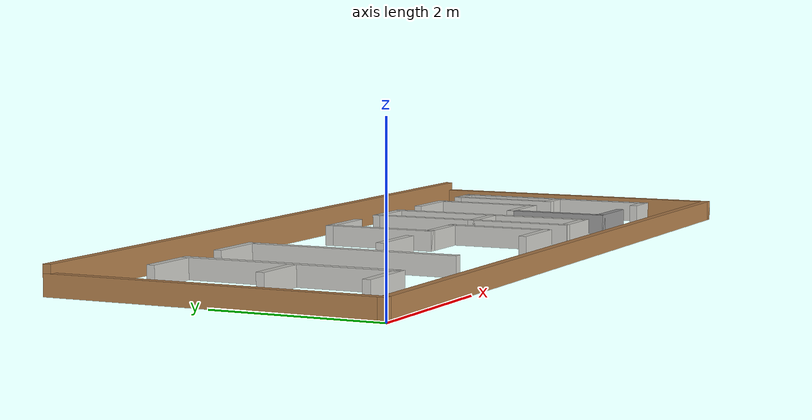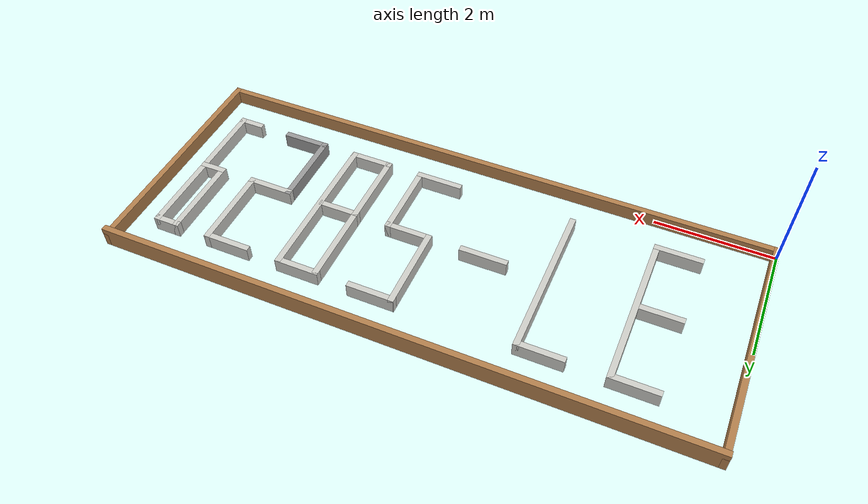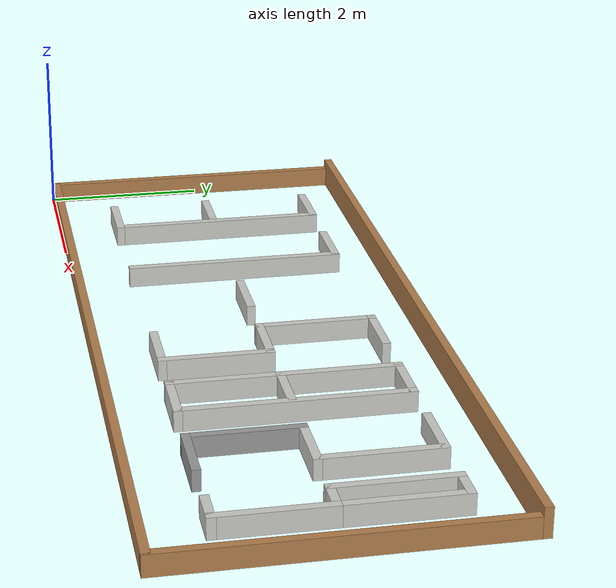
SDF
<?xml version='1.0'?>
<sdf version='1.6'>
  <model name='ms4_map'>
    <pose frame=''>5 2 0 0 -0 0</pose>
    <link name='Wall_0'>
      <collision name='Wall_0_Collision'>
        <geometry>
          <box>
            <size>10 0.1 0.25</size>
          </box>
        </geometry>
        <pose frame=''>0 0 0.125 0 -0 0</pose>
      </collision>
      <visual name='Wall_0_Visual'>
        <pose frame=''>0 0 0.125 0 -0 0</pose>
        <geometry>
          <box>
            <size>10 0.1 0.25</size>
          </box>
        </geometry>
        <material>
          <script>
            <uri>file://media/materials/scripts/gazebo.material</uri>
            <name>Gazebo/Wood</name>
          </script>
          <ambient>1 1 1 1</ambient>
        </material>
      </visual>
      <pose frame=''>0 -1.95 0 0 -0 0</pose>
    </link>
    <link name='Wall_11'>
      <collision name='Wall_11_Collision'>
        <geometry>
          <box>
            <size>4 0.1 0.25</size>
          </box>
        </geometry>
        <pose frame=''>0 0 0.125 0 -0 0</pose>
      </collision>
      <visual name='Wall_11_Visual'>
        <pose frame=''>0 0 0.125 0 -0 0</pose>
        <geometry>
          <box>
            <size>4 0.1 0.25</size>
          </box>
        </geometry>
        <material>
          <script>
            <uri>file://media/materials/scripts/gazebo.material</uri>
            <name>Gazebo/Wood</name>
          </script>
          <ambient>1 1 1 1</ambient>
        </material>
      </visual>
      <pose frame=''>4.95 0 0 0 -0 1.5708</pose>
    </link>
    <link name='Wall_17'>
      <collision name='Wall_17_Collision'>
        <geometry>
          <box>
            <size>0.8 0.1 0.25</size>
          </box>
        </geometry>
        <pose frame=''>0 0 0.125 0 -0 0</pose>
      </collision>
      <visual name='Wall_17_Visual'>
        <pose frame=''>0 0 0.125 0 -0 0</pose>
        <geometry>
          <box>
            <size>0.8 0.1 0.25</size>
          </box>
        </geometry>
        <material>
          <script>
            <uri>file://media/materials/scripts/gazebo.material</uri>
            <name>Gazebo/CeilingTiled</name>
          </script>
          <ambient>1 1 1 1</ambient>
        </material>
      </visual>
      <pose frame=''>-3.55 1.35 0 0 -0 0</pose>
    </link>
    <link name='Wall_21'>
      <collision name='Wall_21_Collision'>
        <geometry>
          <box>
            <size>2.7 0.1 0.25</size>
          </box>
        </geometry>
        <pose frame=''>0 0 0.125 0 -0 0</pose>
      </collision>
      <visual name='Wall_21_Visual'>
        <pose frame=''>0 0 0.125 0 -0 0</pose>
        <geometry>
          <box>
            <size>2.7 0.1 0.25</size>
          </box>
        </geometry>
        <material>
          <script>
            <uri>file://media/materials/scripts/gazebo.material</uri>
            <name>Gazebo/CeilingTiled</name>
          </script>
          <ambient>1 1 1 1</ambient>
        </material>
      </visual>
      <pose frame=''>-3.2 0.05 0 0 0 -1.5708</pose>
    </link>
    <link name='Wall_23'>
      <collision name='Wall_23_Collision'>
        <geometry>
          <box>
            <size>0.8 0.1 0.25</size>
          </box>
        </geometry>
        <pose frame=''>0 0 0.125 0 -0 0</pose>
      </collision>
      <visual name='Wall_23_Visual'>
        <pose frame=''>0 0 0.125 0 -0 0</pose>
        <geometry>
          <box>
            <size>0.8 0.1 0.25</size>
          </box>
        </geometry>
        <material>
          <script>
            <uri>file://media/materials/scripts/gazebo.material</uri>
            <name>Gazebo/CeilingTiled</name>
          </script>
          <ambient>1 1 1 1</ambient>
        </material>
      </visual>
      <pose frame=''>-3.55 -1.25 0 0 -0 3.14159</pose>
    </link>
    <link name='Wall_27'>
      <collision name='Wall_27_Collision'>
        <geometry>
          <box>
            <size>0.7 0.1 0.25</size>
          </box>
        </geometry>
        <pose frame=''>0 0 0.125 0 -0 0</pose>
      </collision>
      <visual name='Wall_27_Visual'>
        <pose frame=''>0 0 0.125 0 -0 0</pose>
        <geometry>
          <box>
            <size>0.7 0.1 0.25</size>
          </box>
        </geometry>
        <material>
          <script>
            <uri>file://media/materials/scripts/gazebo.material</uri>
            <name>Gazebo/CeilingTiled</name>
          </script>
          <ambient>1 1 1 1</ambient>
        </material>
      </visual>
      <pose frame=''>-3.599 0 0 0 -0 3.14159</pose>
    </link>
    <link name='Wall_29'>
      <collision name='Wall_29_Collision'>
        <geometry>
          <box>
            <size>0.8 0.1 0.25</size>
          </box>
        </geometry>
        <pose frame=''>0 0 0.125 0 -0 0</pose>
      </collision>
      <visual name='Wall_29_Visual'>
        <pose frame=''>0 0 0.125 0 -0 0</pose>
        <geometry>
          <box>
            <size>0.8 0.1 0.25</size>
          </box>
        </geometry>
        <material>
          <script>
            <uri>file://media/materials/scripts/gazebo.material</uri>
            <name>Gazebo/CeilingTiled</name>
          </script>
          <ambient>1 1 1 1</ambient>
        </material>
      </visual>
      <pose frame=''>-2.15 1.35 0 0 -0 0</pose>
    </link>
    <link name='Wall_31'>
      <collision name='Wall_31_Collision'>
        <geometry>
          <box>
            <size>2.7 0.1 0.25</size>
          </box>
        </geometry>
        <pose frame=''>0 0 0.125 0 -0 0</pose>
      </collision>
      <visual name='Wall_31_Visual'>
        <pose frame=''>0 0 0.125 0 -0 0</pose>
        <geometry>
          <box>
            <size>2.7 0.1 0.25</size>
          </box>
        </geometry>
        <material>
          <script>
            <uri>file://media/materials/scripts/gazebo.material</uri>
            <name>Gazebo/CeilingTiled</name>
          </script>
          <ambient>1 1 1 1</ambient>
        </material>
      </visual>
      <pose frame=''>-1.8 0.05 0 0 0 -1.5708</pose>
    </link>
    <link name='Wall_34'>
      <collision name='Wall_34_Collision'>
        <geometry>
          <box>
            <size>0.8 0.1 0.25</size>
          </box>
        </geometry>
        <pose frame=''>0 0 0.125 0 -0 0</pose>
      </collision>
      <visual name='Wall_34_Visual'>
        <pose frame=''>0 0 0.125 0 -0 0</pose>
        <geometry>
          <box>
            <size>0.8 0.1 0.25</size>
          </box>
        </geometry>
        <material>
          <script>
            <uri>file://media/materials/scripts/gazebo.material</uri>
            <name>Gazebo/CeilingTiled</name>
          </script>
          <ambient>1 1 1 1</ambient>
        </material>
      </visual>
      <pose frame=''>-0.75 0 0 0 -0 0</pose>
    </link>
    <link name='Wall_36'>
      <collision name='Wall_36_Collision'>
        <geometry>
          <box>
            <size>0.8 0.1 0.25</size>
          </box>
        </geometry>
        <pose frame=''>0 0 0.125 0 -0 0</pose>
      </collision>
      <visual name='Wall_36_Visual'>
        <pose frame=''>0 0 0.125 0 -0 0</pose>
        <geometry>
          <box>
            <size>0.8 0.1 0.25</size>
          </box>
        </geometry>
        <material>
          <script>
            <uri>file://media/materials/scripts/gazebo.material</uri>
            <name>Gazebo/CeilingTiled</name>
          </script>
          <ambient>1 1 1 1</ambient>
        </material>
      </visual>
      <pose frame=''>0.55 1.35 0 0 -0 0</pose>
    </link>
    <link name='Wall_4'>
      <collision name='Wall_4_Collision'>
        <geometry>
          <box>
            <size>4.00021 0.1 0.25</size>
          </box>
        </geometry>
        <pose frame=''>0 0 0.125 0 -0 0</pose>
      </collision>
      <visual name='Wall_4_Visual'>
        <pose frame=''>0 0 0.125 0 -0 0</pose>
        <geometry>
          <box>
            <size>4.00021 0.1 0.25</size>
          </box>
        </geometry>
        <material>
          <script>
            <uri>file://media/materials/scripts/gazebo.material</uri>
            <name>Gazebo/Wood</name>
          </script>
          <ambient>1 1 1 1</ambient>
        </material>
      </visual>
      <pose frame=''>-4.95 0 0 0 -0 1.5708</pose>
    </link>
    <link name='Wall_40'>
      <collision name='Wall_40_Collision'>
        <geometry>
          <box>
            <size>1.45 0.1 0.25</size>
          </box>
        </geometry>
        <pose frame=''>0 0 0.125 0 -0 0</pose>
      </collision>
      <visual name='Wall_40_Visual'>
        <pose frame=''>0 0 0.125 0 -0 0</pose>
        <geometry>
          <box>
            <size>1.45 0.1 0.25</size>
          </box>
        </geometry>
        <material>
          <script>
            <uri>file://media/materials/scripts/gazebo.material</uri>
            <name>Gazebo/CeilingTiled</name>
          </script>
          <ambient>1 1 1 1</ambient>
        </material>
      </visual>
      <pose frame=''>0.2 0.675 0 0 0 -1.5708</pose>
    </link>
    <link name='Wall_42'>
      <collision name='Wall_42_Collision'>
        <geometry>
          <box>
            <size>0.8 0.1 0.25</size>
          </box>
        </geometry>
        <pose frame=''>0 0 0.125 0 -0 0</pose>
      </collision>
      <visual name='Wall_42_Visual'>
        <pose frame=''>0 0 0.125 0 -0 0</pose>
        <geometry>
          <box>
            <size>0.8 0.1 0.25</size>
          </box>
        </geometry>
        <material>
          <script>
            <uri>file://media/materials/scripts/gazebo.material</uri>
            <name>Gazebo/CeilingTiled</name>
          </script>
          <ambient>1 1 1 1</ambient>
        </material>
      </visual>
      <pose frame=''>0.55 0 0 0 -0 0</pose>
    </link>
    <link name='Wall_44'>
      <collision name='Wall_44_Collision'>
        <geometry>
          <box>
            <size>1.35 0.1 0.25</size>
          </box>
        </geometry>
        <pose frame=''>0 0 0.125 0 -0 0</pose>
      </collision>
      <visual name='Wall_44_Visual'>
        <pose frame=''>0 0 0.125 0 -0 0</pose>
        <geometry>
          <box>
            <size>1.35 0.1 0.25</size>
          </box>
        </geometry>
        <material>
          <script>
            <uri>file://media/materials/scripts/gazebo.material</uri>
            <name>Gazebo/CeilingTiled</name>
          </script>
          <ambient>1 1 1 1</ambient>
        </material>
      </visual>
      <pose frame=''>0.9 -0.625 0 0 0 -1.5708</pose>
    </link>
    <link name='Wall_46'>
      <collision name='Wall_46_Collision'>
        <geometry>
          <box>
            <size>0.8 0.1 0.25</size>
          </box>
        </geometry>
        <pose frame=''>0 0 0.125 0 -0 0</pose>
      </collision>
      <visual name='Wall_46_Visual'>
        <pose frame=''>0 0 0.125 0 -0 0</pose>
        <geometry>
          <box>
            <size>0.8 0.1 0.25</size>
          </box>
        </geometry>
        <material>
          <script>
            <uri>file://media/materials/scripts/gazebo.material</uri>
            <name>Gazebo/CeilingTiled</name>
          </script>
          <ambient>1 1 1 1</ambient>
        </material>
      </visual>
      <pose frame=''>0.55 -1.25 0 0 -0 3.14159</pose>
    </link>
    <link name='Wall_48'>
      <collision name='Wall_48_Collision'>
        <geometry>
          <box>
            <size>0.75 0.1 0.25</size>
          </box>
        </geometry>
        <pose frame=''>0 0 0.125 0 -0 0</pose>
      </collision>
      <visual name='Wall_48_Visual'>
        <pose frame=''>0 0 0.125 0 -0 0</pose>
        <geometry>
          <box>
            <size>0.75 0.1 0.25</size>
          </box>
        </geometry>
        <material>
          <script>
            <uri>file://media/materials/scripts/gazebo.material</uri>
            <name>Gazebo/CeilingTiled</name>
          </script>
          <ambient>1 1 1 1</ambient>
        </material>
      </visual>
      <pose frame=''>1.825 1.35 0 0 -0 0</pose>
    </link>
    <link name='Wall_50'>
      <collision name='Wall_50_Collision'>
        <geometry>
          <box>
            <size>2.7 0.1 0.25</size>
          </box>
        </geometry>
        <pose frame=''>0 0 0.125 0 -0 0</pose>
      </collision>
      <visual name='Wall_50_Visual'>
        <pose frame=''>0 0 0.125 0 -0 0</pose>
        <geometry>
          <box>
            <size>2.7 0.1 0.25</size>
          </box>
        </geometry>
        <material>
          <script>
            <uri>file://media/materials/scripts/gazebo.material</uri>
            <name>Gazebo/CeilingTiled</name>
          </script>
          <ambient>1 1 1 1</ambient>
        </material>
      </visual>
      <pose frame=''>1.5 0.05 0 0 0 -1.5708</pose>
    </link>
    <link name='Wall_52'>
      <collision name='Wall_52_Collision'>
        <geometry>
          <box>
            <size>2.7 0.1 0.25</size>
          </box>
        </geometry>
        <pose frame=''>0 0 0.125 0 -0 0</pose>
      </collision>
      <visual name='Wall_52_Visual'>
        <pose frame=''>0 0 0.125 0 -0 0</pose>
        <geometry>
          <box>
            <size>2.7 0.1 0.25</size>
          </box>
        </geometry>
        <material>
          <script>
            <uri>file://media/materials/scripts/gazebo.material</uri>
            <name>Gazebo/CeilingTiled</name>
          </script>
          <ambient>1 1 1 1</ambient>
        </material>
      </visual>
      <pose frame=''>2.15 0.05 0 0 0 -1.5708</pose>
    </link>
    <link name='Wall_54'>
      <collision name='Wall_54_Collision'>
        <geometry>
          <box>
            <size>0.75 0.1 0.25</size>
          </box>
        </geometry>
        <pose frame=''>0 0 0.125 0 -0 0</pose>
      </collision>
      <visual name='Wall_54_Visual'>
        <pose frame=''>0 0 0.125 0 -0 0</pose>
        <geometry>
          <box>
            <size>0.75 0.1 0.25</size>
          </box>
        </geometry>
        <material>
          <script>
            <uri>file://media/materials/scripts/gazebo.material</uri>
            <name>Gazebo/CeilingTiled</name>
          </script>
          <ambient>1 1 1 1</ambient>
        </material>
      </visual>
      <pose frame=''>1.825 -1.25 0 0 -0 0</pose>
    </link>
    <link name='Wall_56'>
      <collision name='Wall_56_Collision'>
        <geometry>
          <box>
            <size>0.7 0.1 0.25</size>
          </box>
        </geometry>
        <pose frame=''>0 0 0.125 0 -0 0</pose>
      </collision>
      <visual name='Wall_56_Visual'>
        <pose frame=''>0 0 0.125 0 -0 0</pose>
        <geometry>
          <box>
            <size>0.7 0.1 0.25</size>
          </box>
        </geometry>
        <material>
          <script>
            <uri>file://media/materials/scripts/gazebo.material</uri>
            <name>Gazebo/CeilingTiled</name>
          </script>
          <ambient>1 1 1 1</ambient>
        </material>
      </visual>
      <pose frame=''>1.8 0 0 0 -0 0</pose>
    </link>
    <link name='Wall_58'>
      <collision name='Wall_58_Collision'>
        <geometry>
          <box>
            <size>0.8 0.1 0.25</size>
          </box>
        </geometry>
        <pose frame=''>0 0 0.125 0 -0 0</pose>
      </collision>
      <visual name='Wall_58_Visual'>
        <pose frame=''>0 0 0.125 0 -0 0</pose>
        <geometry>
          <box>
            <size>0.8 0.1 0.25</size>
          </box>
        </geometry>
        <material>
          <script>
            <uri>file://media/materials/scripts/gazebo.material</uri>
            <name>Gazebo/CeilingTiled</name>
          </script>
          <ambient>1 1 1 1</ambient>
        </material>
      </visual>
      <pose frame=''>3.1 1.35 0 0 -0 0</pose>
    </link>
    <link name='Wall_60'>
      <collision name='Wall_60_Collision'>
        <geometry>
          <box>
            <size>1.45 0.1 0.25</size>
          </box>
        </geometry>
        <pose frame=''>0 0 0.125 0 -0 0</pose>
      </collision>
      <visual name='Wall_60_Visual'>
        <pose frame=''>0 0 0.125 0 -0 0</pose>
        <geometry>
          <box>
            <size>1.45 0.1 0.25</size>
          </box>
        </geometry>
        <material>
          <script>
            <uri>file://media/materials/scripts/gazebo.material</uri>
            <name>Gazebo/CeilingTiled</name>
          </script>
          <ambient>1 1 1 1</ambient>
        </material>
      </visual>
      <pose frame=''>3.45 0.675 0 0 0 -1.5708</pose>
    </link>
    <link name='Wall_62'>
      <collision name='Wall_62_Collision'>
        <geometry>
          <box>
            <size>0.8 0.1 0.25</size>
          </box>
        </geometry>
        <pose frame=''>0 0 0.125 0 -0 0</pose>
      </collision>
      <visual name='Wall_62_Visual'>
        <pose frame=''>0 0 0.125 0 -0 0</pose>
        <geometry>
          <box>
            <size>0.8 0.1 0.25</size>
          </box>
        </geometry>
        <material>
          <script>
            <uri>file://media/materials/scripts/gazebo.material</uri>
            <name>Gazebo/CeilingTiled</name>
          </script>
          <ambient>1 1 1 1</ambient>
        </material>
      </visual>
      <pose frame=''>3.1 0 0 0 -0 3.14159</pose>
    </link>
    <link name='Wall_64'>
      <collision name='Wall_64_Collision'>
        <geometry>
          <box>
            <size>1.35 0.1 0.25</size>
          </box>
        </geometry>
        <pose frame=''>0 0 0.125 0 -0 0</pose>
      </collision>
      <visual name='Wall_64_Visual'>
        <pose frame=''>0 0 0.125 0 -0 0</pose>
        <geometry>
          <box>
            <size>1.35 0.1 0.25</size>
          </box>
        </geometry>
        <material>
          <script>
            <uri>file://media/materials/scripts/gazebo.material</uri>
            <name>Gazebo/Grey</name>
          </script>
          <ambient>1 1 1 1</ambient>
        </material>
      </visual>
      <pose frame=''>2.75 -0.625 0 0 0 -1.5708</pose>
    </link>
    <link name='Wall_66'>
      <collision name='Wall_66_Collision'>
        <geometry>
          <box>
            <size>0.8 0.1 0.25</size>
          </box>
        </geometry>
        <pose frame=''>0 0 0.125 0 -0 0</pose>
      </collision>
      <visual name='Wall_66_Visual'>
        <pose frame=''>0 0 0.125 0 -0 0</pose>
        <geometry>
          <box>
            <size>0.8 0.1 0.25</size>
          </box>
        </geometry>
        <material>
          <script>
            <uri>file://media/materials/scripts/gazebo.material</uri>
            <name>Gazebo/Grey</name>
          </script>
          <ambient>1 1 1 1</ambient>
        </material>
      </visual>
      <pose frame=''>3.1 -1.25 0 0 -0 0</pose>
    </link>
    <link name='Wall_68'>
      <collision name='Wall_68_Collision'>
        <geometry>
          <box>
            <size>0.45 0.1 0.25</size>
          </box>
        </geometry>
        <pose frame=''>0 0 0.125 0 -0 0</pose>
      </collision>
      <visual name='Wall_68_Visual'>
        <pose frame=''>0 0 0.125 0 -0 0</pose>
        <geometry>
          <box>
            <size>0.45 0.1 0.25</size>
          </box>
        </geometry>
        <material>
          <script>
            <uri>file://media/materials/scripts/gazebo.material</uri>
            <name>Gazebo/CeilingTiled</name>
          </script>
          <ambient>1 1 1 1</ambient>
        </material>
      </visual>
      <pose frame=''>4.225 1.35 0 0 -0 0</pose>
    </link>
    <link name='Wall_70'>
      <collision name='Wall_70_Collision'>
        <geometry>
          <box>
            <size>1.45 0.1 0.25</size>
          </box>
        </geometry>
        <pose frame=''>0 0 0.125 0 -0 0</pose>
      </collision>
      <visual name='Wall_70_Visual'>
        <pose frame=''>0 0 0.125 0 -0 0</pose>
        <geometry>
          <box>
            <size>1.45 0.1 0.25</size>
          </box>
        </geometry>
        <material>
          <script>
            <uri>file://media/materials/scripts/gazebo.material</uri>
            <name>Gazebo/CeilingTiled</name>
          </script>
          <ambient>1 1 1 1</ambient>
        </material>
      </visual>
      <pose frame=''>4.05 0.675 0 0 0 -1.5708</pose>
    </link>
    <link name='Wall_72'>
      <collision name='Wall_72_Collision'>
        <geometry>
          <box>
            <size>1.45 0.1 0.25</size>
          </box>
        </geometry>
        <pose frame=''>0 0 0.125 0 -0 0</pose>
      </collision>
      <visual name='Wall_72_Visual'>
        <pose frame=''>0 0 0.125 0 -0 0</pose>
        <geometry>
          <box>
            <size>1.45 0.1 0.25</size>
          </box>
        </geometry>
        <material>
          <script>
            <uri>file://media/materials/scripts/gazebo.material</uri>
            <name>Gazebo/CeilingTiled</name>
          </script>
          <ambient>1 1 1 1</ambient>
        </material>
      </visual>
      <pose frame=''>4.4 0.675 0 0 0 -1.5708</pose>
    </link>
    <link name='Wall_74'>
      <collision name='Wall_74_Collision'>
        <geometry>
          <box>
            <size>0.45 0.1 0.25</size>
          </box>
        </geometry>
        <pose frame=''>0 0 0.125 0 -0 0</pose>
      </collision>
      <visual name='Wall_74_Visual'>
        <pose frame=''>0 0 0.125 0 -0 0</pose>
        <geometry>
          <box>
            <size>0.45 0.1 0.25</size>
          </box>
        </geometry>
        <material>
          <script>
            <uri>file://media/materials/scripts/gazebo.material</uri>
            <name>Gazebo/CeilingTiled</name>
          </script>
          <ambient>1 1 1 1</ambient>
        </material>
      </visual>
      <pose frame=''>4.225 0 0 0 -0 0</pose>
    </link>
    <link name='Wall_76'>
      <collision name='Wall_76_Collision'>
        <geometry>
          <box>
            <size>1.35 0.1 0.25</size>
          </box>
        </geometry>
        <pose frame=''>0 0 0.125 0 -0 0</pose>
      </collision>
      <visual name='Wall_76_Visual'>
        <pose frame=''>0 0 0.125 0 -0 0</pose>
        <geometry>
          <box>
            <size>1.35 0.1 0.25</size>
          </box>
        </geometry>
        <material>
          <script>
            <uri>file://media/materials/scripts/gazebo.material</uri>
            <name>Gazebo/CeilingTiled</name>
          </script>
          <ambient>1 1 1 1</ambient>
        </material>
      </visual>
      <pose frame=''>4.4 -0.625 0 0 0 -1.5708</pose>
    </link>
    <link name='Wall_78'>
      <collision name='Wall_78_Collision'>
        <geometry>
          <box>
            <size>0.45 0.1 0.25</size>
          </box>
        </geometry>
        <pose frame=''>0 0 0.125 0 -0 0</pose>
      </collision>
      <visual name='Wall_78_Visual'>
        <pose frame=''>0 0 0.125 0 -0 0</pose>
        <geometry>
          <box>
            <size>0.45 0.1 0.25</size>
          </box>
        </geometry>
        <material>
          <script>
            <uri>file://media/materials/scripts/gazebo.material</uri>
            <name>Gazebo/CeilingTiled</name>
          </script>
          <ambient>1 1 1 1</ambient>
        </material>
      </visual>
      <pose frame=''>4.225 -1.25 0 0 -0 3.14159</pose>
    </link>
    <link name='Wall_8'>
      <collision name='Wall_8_Collision'>
        <geometry>
          <box>
            <size>10 0.1 0.35</size>
          </box>
        </geometry>
        <pose frame=''>0 0 0.175 0 -0 0</pose>
      </collision>
      <visual name='Wall_8_Visual'>
        <pose frame=''>0 0 0.175 0 -0 0</pose>
        <geometry>
          <box>
            <size>10 0.1 0.35</size>
          </box>
        </geometry>
        <material>
          <script>
            <uri>file://media/materials/scripts/gazebo.material</uri>
            <name>Gazebo/Wood</name>
          </script>
          <ambient>1 1 1 1</ambient>
        </material>
      </visual>
      <pose frame=''>0 1.95 0 0 -0 0</pose>
    </link>
    <static>1</static>
  </model>
</sdf>
